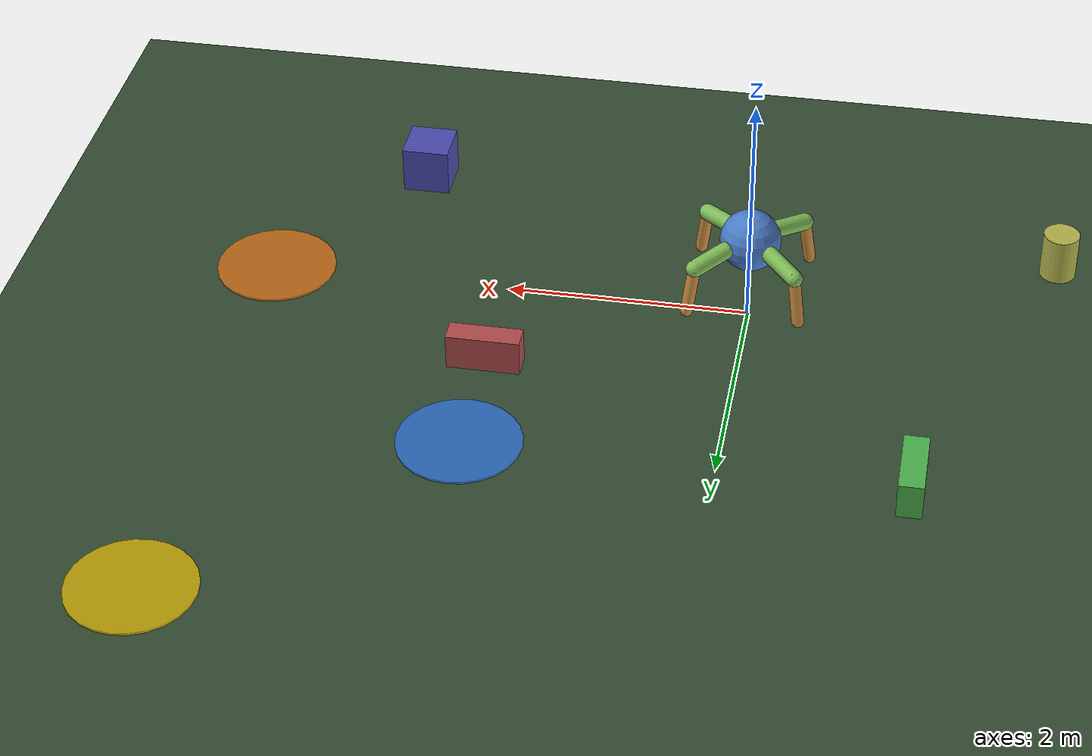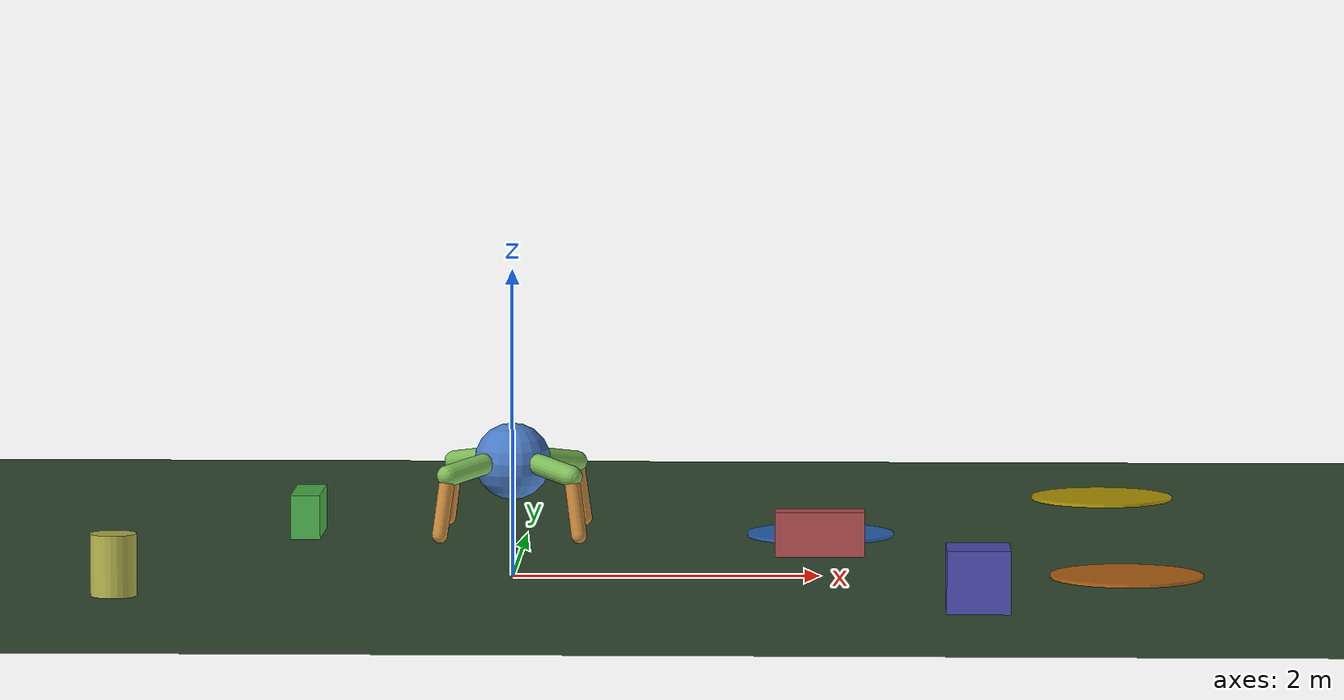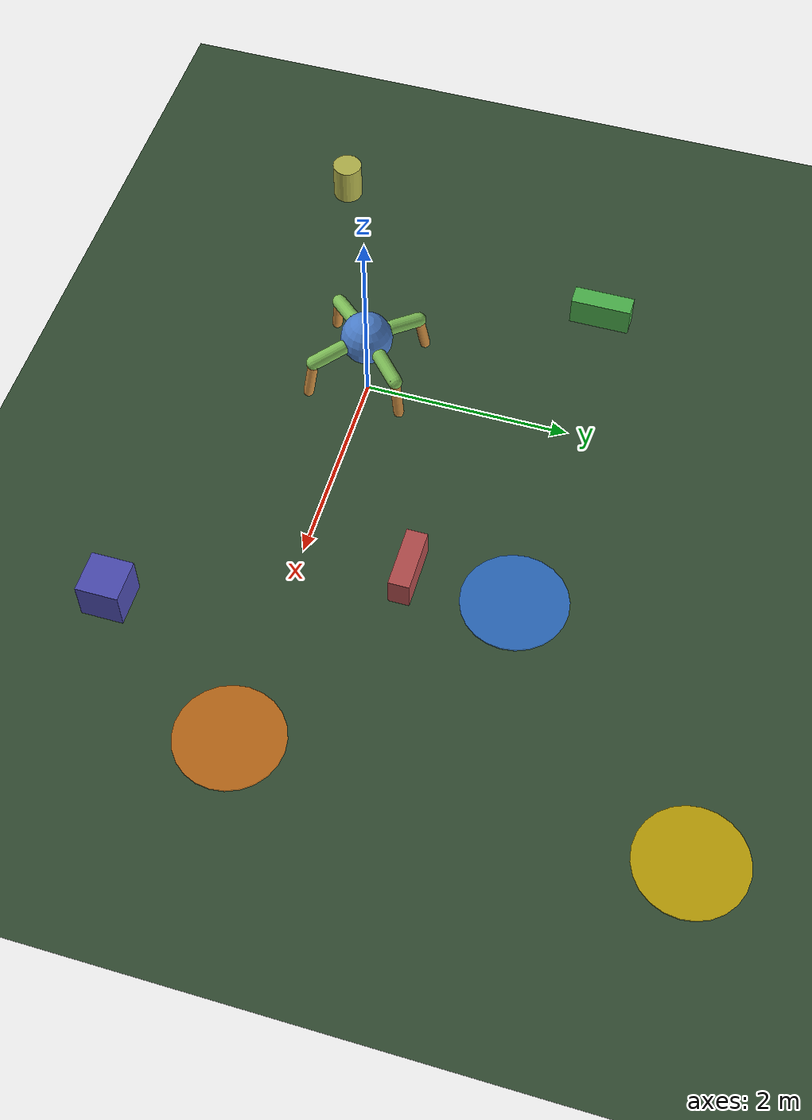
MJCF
<mujoco model="ant">
  <compiler angle="degree" inertiafromgeom="true"/>
  <option integrator="RK4" timestep="0.01" gravity="0 0 -9.81"/>

  <default>
    <joint armature="1" damping="2" limited="true"/>
    <geom conaffinity="1" condim="3" density="5.0"
          friction="1.5 0.1 0.1" margin="0.01"/>
    <motor ctrllimited="true" ctrlrange="-1 1" gear="150"/>
  </default>

  <asset>
    <texture builtin="checker" height="100" name="texplane"
             rgb1="0.25 0.35 0.25" rgb2="0.15 0.25 0.15"
             type="2d" width="100"/>
    <material name="MatPlane" reflectance="0.4" shininess="0.5"
              specular="0.5" texrepeat="40 40" texture="texplane"/>
    <material name="torso_mat"  rgba="0.3 0.5 0.8 1"/>
    <material name="leg_mat"    rgba="0.5 0.75 0.35 1"/>
    <material name="ankle_mat"  rgba="0.8 0.55 0.25 1"/>
  </asset>

  <worldbody>
    <light cutoff="100" diffuse="1 1 1" dir="0 0 -1.3"
           directional="true" exponent="1" pos="0 0 3" specular=".2 .2 .2"/>
    <light cutoff="100" diffuse="0.5 0.5 0.5" dir="0 -1 -0.5"
           directional="true" pos="0 2 2"/>

    <!-- Ground -->
    <geom conaffinity="1" condim="3" material="MatPlane"
          name="floor" pos="0 0 0" size="50 50 0.1" type="plane"/>

    <!-- Obstacles -->
    <geom type="box" size="0.3 0.1 0.15" pos=" 2.0  1.0 0.15" rgba="0.7 0.3 0.3 1"/>
    <geom type="box" size="0.1 0.3 0.15" pos="-1.5  2.0 0.15" rgba="0.3 0.7 0.3 1"/>
    <geom type="box" size="0.2 0.2 0.20" pos=" 3.0 -1.5 0.20" rgba="0.3 0.3 0.7 1"/>
    <geom type="cylinder" size="0.15 0.2" pos="-2.5 -1.0 0.20" rgba="0.7 0.7 0.3 1"/>

    <!-- Waypoint 1 — blue -->
    <geom type="cylinder" size="0.5 0.01" pos="2.0 2.0 0.01"
          rgba="0.2 0.5 1.0 0.7" contype="0" conaffinity="0"/>
    <!-- Waypoint 2 — orange -->
    <geom type="cylinder" size="0.5 0.01" pos="4.0 0.0 0.01"
          rgba="1.0 0.5 0.1 0.7" contype="0" conaffinity="0"/>
    <!-- Final goal — gold -->
    <geom type="cylinder" size="0.5 0.01" pos="4.0 4.0 0.01"
          rgba="1.0 0.8 0.0 0.7" contype="0" conaffinity="0"/>

    <body name="torso" pos="0 0 0.75">
      <camera name="track" mode="trackcom" pos="0 -4 2"
              xyaxes="1 0 0 0 0.6 0.8"/>
      <camera name="top" mode="trackcom" pos="0 0 6"
              xyaxes="1 0 0 0 1 0"/>

      <geom name="torso_geom" type="sphere" size="0.25"
            material="torso_mat" mass="5"/>
      <joint armature="0" damping="0" limited="false"
             name="root" pos="0 0 0" type="free"/>

      <!-- ══════════════════════════════════════════
           FRONT-LEFT  (FL)  — hip socket at +x +y
           ══════════════════════════════════════════ -->
      <body name="fl_upper" pos="0.18 0.18 0.0">
        <!-- upper segment: from hip socket outward-and-slightly-down -->
        <geom type="capsule" fromto="0 0 0  0.22 0.22 -0.05"
              size="0.07" material="leg_mat"/>
        <!-- hip joint is at the socket; controls swing in horizontal plane -->
        <joint name="hip1" type="hinge" axis="0 0 1"
               range="-40 40" pos="0 0 0"/>
        <body name="fl_lower" pos="0.22 0.22 -0.05">
          <!-- ankle joint: bends the lower leg up/down -->
          <joint name="ankle1" type="hinge" axis="-1 1 0"
                 range="-70 30" pos="0 0 0"/>
          <!-- lower segment goes nearly straight down to touch the floor -->
          <geom type="capsule" fromto="0 0 0  0.05 0.05 -0.38"
                size="0.05" material="ankle_mat"/>
        </body>
      </body>

      <!-- ══════════════════════════════════════════
           FRONT-RIGHT (FR)  — hip socket at -x +y
           ══════════════════════════════════════════ -->
      <body name="fr_upper" pos="-0.18 0.18 0.0">
        <geom type="capsule" fromto="0 0 0  -0.22 0.22 -0.05"
              size="0.07" material="leg_mat"/>
        <joint name="hip2" type="hinge" axis="0 0 1"
               range="-40 40" pos="0 0 0"/>
        <body name="fr_lower" pos="-0.22 0.22 -0.05">
          <joint name="ankle2" type="hinge" axis="1 1 0"
                 range="-30 70" pos="0 0 0"/>
          <geom type="capsule" fromto="0 0 0  -0.05 0.05 -0.38"
                size="0.05" material="ankle_mat"/>
        </body>
      </body>

      <!-- ══════════════════════════════════════════
           BACK-LEFT  (BL)  — hip socket at +x -y
           ══════════════════════════════════════════ -->
      <body name="bl_upper" pos="0.18 -0.18 0.0">
        <geom type="capsule" fromto="0 0 0  0.22 -0.22 -0.05"
              size="0.07" material="leg_mat"/>
        <joint name="hip3" type="hinge" axis="0 0 1"
               range="-40 40" pos="0 0 0"/>
        <body name="bl_lower" pos="0.22 -0.22 -0.05">
          <joint name="ankle3" type="hinge" axis="-1 -1 0"
                 range="-30 70" pos="0 0 0"/>
          <geom type="capsule" fromto="0 0 0  0.05 -0.05 -0.38"
                size="0.05" material="ankle_mat"/>
        </body>
      </body>

      <!-- ══════════════════════════════════════════
           BACK-RIGHT (BR)  — hip socket at -x -y
           ══════════════════════════════════════════ -->
      <body name="br_upper" pos="-0.18 -0.18 0.0">
        <geom type="capsule" fromto="0 0 0  -0.22 -0.22 -0.05"
              size="0.07" material="leg_mat"/>
        <joint name="hip4" type="hinge" axis="0 0 1"
               range="-40 40" pos="0 0 0"/>
        <body name="br_lower" pos="-0.22 -0.22 -0.05">
          <joint name="ankle4" type="hinge" axis="1 -1 0"
                 range="-70 30" pos="0 0 0"/>
          <geom type="capsule" fromto="0 0 0  -0.05 -0.05 -0.38"
                size="0.05" material="ankle_mat"/>
        </body>
      </body>

    </body>
  </worldbody>

  <actuator>
    <!-- order matches walk.py: hip1 ankle1 hip2 ankle2 hip3 ankle3 hip4 ankle4 -->
    <motor name="motor1" joint="hip1"/>
    <motor name="motor2" joint="ankle1"/>
    <motor name="motor3" joint="hip2"/>
    <motor name="motor4" joint="ankle2"/>
    <motor name="motor5" joint="hip3"/>
    <motor name="motor6" joint="ankle3"/>
    <motor name="motor7" joint="hip4"/>
    <motor name="motor8" joint="ankle4"/>
  </actuator>

</mujoco>
